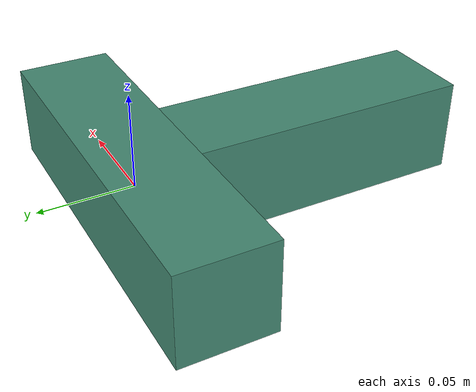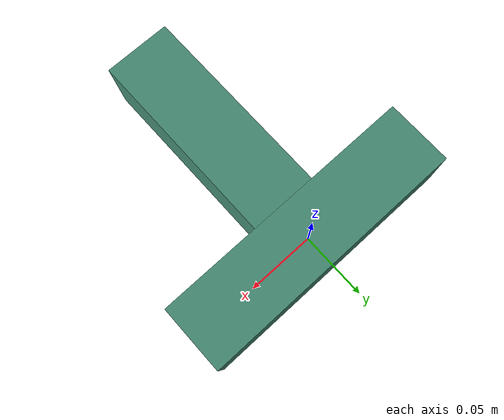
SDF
<?xml version="1.0"?>
<sdf version="1.7">
  <model name="t_pusher">
    <link name="t_pusher_top">
      <inertial>
        <mass>0.08742857142857141</mass>
        <inertia>
          <ixx>3.64285714e-05</ixx>
          <ixy>0</ixy>
          <ixz>0</ixz>
          <iyy>3.09642857e-04</iyy>
          <iyz>0</iyz>
          <izz>3.09642857e-04</izz>
        </inertia>
      </inertial>
      <visual name="t_pusher_top_visual">
        <pose>0.0 0.0 0.0 0.0 0.0 0.0</pose>
        <geometry>
          <box>
            <size>0.2 0.05 0.05</size>
          </box>
        </geometry>
        <material>
          <diffuse> 0.26953125 0.54296875 0.453125 1. </diffuse>
        </material>
      </visual>
      <collision name="t_pusher_top_collision">
        <geometry>
          <box>
            <size>0.2 0.05 0.05</size>
          </box>
        </geometry>
        <drake:proximity_properties>
          <drake:compliant_hydroelastic/>
          <drake:hunt_crossley_dissipation>3.0</drake:hunt_crossley_dissipation>
          <drake:hydroelastic_modulus>1e7</drake:hydroelastic_modulus>
          <drake:mesh_resolution_hint>0.005</drake:mesh_resolution_hint>
          <drake:mu_dynamic>0.5</drake:mu_dynamic>
          <drake:mu_static>0.5</drake:mu_static>
        </drake:proximity_properties>
      </collision>
    </link>
    <link name="t_pusher_bottom">
      <pose>0 -0.1 0 0 0 0</pose>
      <inertial>
        <mass>0.06557142857142857</mass>
        <inertia>
          <ixx>1.36607143e-04</ixx>
          <ixy>0</ixy>
          <ixz>0</ixz>
          <iyy>2.73214286e-05</iyy>
          <iyz>0</iyz>
          <izz>1.36607143e-04</izz>
        </inertia>
      </inertial>
      <visual name="t_pusher_bottom_visual">
        <pose>0.0 0.0 0.0 0.0 0.0 0.0</pose>
        <geometry>
          <box>
            <size>0.05 0.15 0.05</size>
          </box>
        </geometry>
        <material>
          <diffuse> 0.26953125 0.54296875 0.453125 1. </diffuse>
        </material>
      </visual>
      <collision name="t_pusher_bottom_collision">
        <pose>0.0 0.0 0.0 0.0 0.0 0.0</pose>
        <geometry>
          <box>
            <size>0.05 0.15 0.05</size>
          </box>
        </geometry>
        <drake:proximity_properties>
          <drake:compliant_hydroelastic/>
          <drake:hunt_crossley_dissipation>3.0</drake:hunt_crossley_dissipation>
          <drake:hydroelastic_modulus>1e7</drake:hydroelastic_modulus>
          <drake:mesh_resolution_hint>0.005</drake:mesh_resolution_hint>
          <drake:mu_dynamic>0.5</drake:mu_dynamic>
          <drake:mu_static>0.5</drake:mu_static>
        </drake:proximity_properties>
      </collision>
    </link>
    <joint name="t_pusher_joint" type="fixed">
      <parent>t_pusher_top</parent>
      <child>t_pusher_bottom</child>
      <pose>0 0 0 0 0 0</pose>
    </joint>
  </model>
</sdf>
